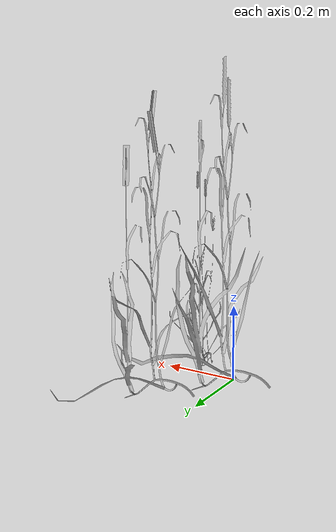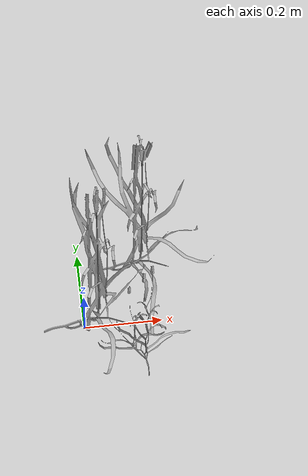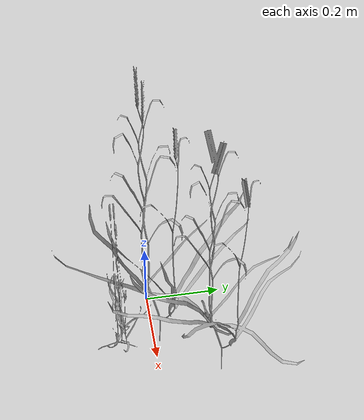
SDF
<?xml version="1.0" ?>
<sdf version="1.6">
  <model name="weed3">
    <static>1</static>
    <link name="weed3_1">

      <visual name="branch">
        <geometry>
          <mesh>
            <uri>model://weed3/meshes/GC08_1.obj</uri>
          </mesh>
        </geometry>

        <cast_shadows>1</cast_shadows>
      </visual>
    </link>
    <link name="weed3_2">

      <visual name="weed3_2">
        <geometry>
          <mesh>
            <uri>model://weed3/meshes/GC08_2.obj</uri>
          </mesh>
        </geometry>
        <cast_shadows>1</cast_shadows>
      </visual>
        <pose>0.15 -0.15 0 0 0 0</pose>
    </link>
    <link name="weed3_3">

      <visual name="weed3_3">
        <geometry>
          <mesh>
            <uri>model://weed3/meshes/GC08_3.obj</uri>
          </mesh>
        </geometry>
        <cast_shadows>1</cast_shadows>
      </visual>
        <pose>0.15 0.15 0 0 0 0</pose>
    </link>
  </model>
</sdf>
